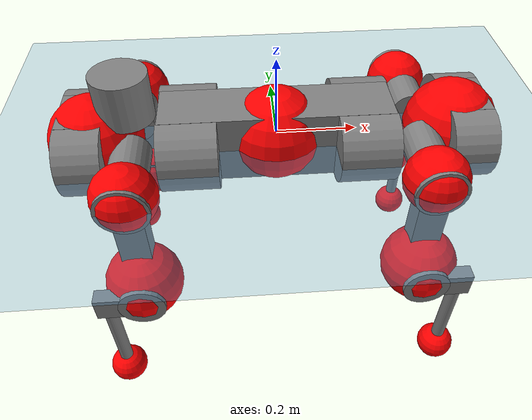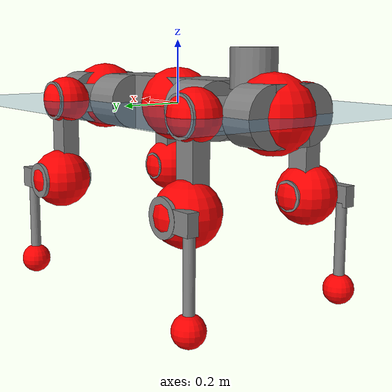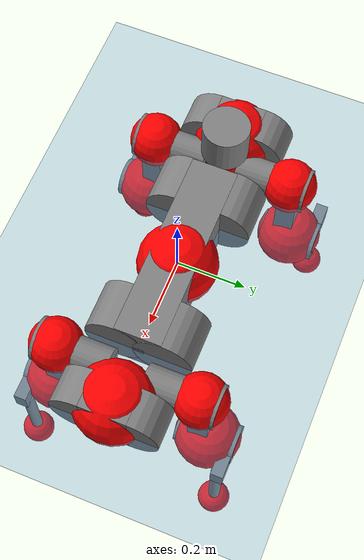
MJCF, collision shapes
<mujoco model="anymal_c">
  <compiler angle="radian" assetdir="assets" balanceinertia="true" inertiafromgeom="false"/>

  <option timestep="0.005" density="1.2" viscosity="2e-05"/>

  <size nkey="1"/>

  <visual>
    <quality shadowsize="8192"/>
    <map shadowclip="0.5"/>
  </visual>

  <default>
    <default class="/">
      <material specular="0" shininess="0.25"/>
      <geom contype="0" conaffinity="0" group="1" solref="-1000 -80"/>
      <site size="0.01 0.005 0.005" group="5"/>
      <general forcelimited="true" forcerange="-80 80" biastype="affine" gainprm="80" biasprm="0 -80 -2"/>
      <default class="anymal_c">
        <joint armature="0.01" damping="0.01" frictionloss="0.1"/>
        <default class="visual">
          <geom type="mesh" group="2"/>
          <default class="visual_zflip"/>
        </default>
        <default class="collision">
          <geom type="cylinder" group="3"/>
          <default class="foot">
            <geom size="0.03 0 0" type="sphere" condim="6" priority="1" friction="0.8 0.02 0.01" solimp="0.015 1 0.03"/>
          </default>
        </default>
      </default>
      <default class="reward_collision_sphere">
        <geom group="5" rgba="1 0 0 1"/>
      </default>
    </default>
  </default>

  <asset>
    <texture type="skybox" colorspace="auto" name="//unnamed_texture_0" builtin="gradient" rgb1="0.95 0.95 0.95" rgb2="0.95 0.95 0.95" width="100" height="600"/>
    <texture type="2d" colorspace="auto" name="texplane" builtin="checker" rgb1="0.345 0.575 0.748" rgb2="0.345 0.575 0.748" markrgb="1 1 1" width="512" height="512"/>
    <texture type="2d" colorspace="linear" name="base" file="base.png"/>
    <texture type="2d" colorspace="linear" name="top_shell" file="top_shell.png"/>
    <texture type="2d" colorspace="linear" name="bottom_shell" file="bottom_shell.png"/>
    <texture type="2d" colorspace="linear" name="remote" file="remote.png"/>
    <texture type="2d" colorspace="linear" name="hatch" file="hatch.png"/>
    <texture type="2d" colorspace="linear" name="handle" file="handle.png"/>
    <texture type="2d" colorspace="linear" name="face" file="face.png"/>
    <texture type="2d" colorspace="linear" name="battery" file="battery.png"/>
    <texture type="2d" colorspace="linear" name="lidar_cage" file="lidar_cage.png"/>
    <texture type="2d" colorspace="linear" name="depth_camera" file="depth_camera.png"/>
    <texture type="2d" colorspace="linear" name="wide_angle_camera" file="wide_angle_camera.png"/>
    <texture type="2d" colorspace="linear" name="lidar" file="lidar.png"/>
    <texture type="2d" colorspace="linear" name="drive" file="drive.png"/>
    <texture type="2d" colorspace="linear" name="hip_l" file="hip_l.png"/>
    <texture type="2d" colorspace="linear" name="shank_l" file="shank_l.png"/>
    <texture type="2d" colorspace="linear" name="foot" file="foot.png"/>
    <texture type="2d" colorspace="linear" name="thigh" file="thigh.png"/>
    <texture type="2d" colorspace="linear" name="shank_r" file="shank_r.png"/>
    <texture type="2d" colorspace="linear" name="hip_r" file="hip_r.png"/>
    <material name="MatPlane" class="/" texture="texplane" texuniform="true" texrepeat="2 2" specular="0.9" shininess="0.5"/>
    <material name="black_plastic" class="/" rgba="0.007 0.007 0.007 1"/>
    <material name="green" class="/" rgba="0.052 0.178 0.033 1"/>
    <material name="red" class="/" rgba="0.178 0.006 0.005 1"/>
    <material name="yellow" class="/" rgba="0.178 0.119 0.006 1"/>
    <material name="lwl" class="/" rgba="0.8 0.8 0.8 1"/>
    <material name="base" class="/" texture="base"/>
    <material name="top_shell" class="/" texture="top_shell"/>
    <material name="bottom_shell" class="/" texture="bottom_shell"/>
    <material name="hip_l" class="/" texture="hip_l"/>
    <material name="thigh" class="/" texture="thigh"/>
    <material name="shank_l" class="/" texture="shank_l"/>
    <material name="foot" class="/" texture="foot"/>
    <material name="hip_r" class="/" texture="hip_r"/>
    <material name="shank" class="/" texture="shank_r"/>
    <material name="hatch" class="/" texture="hatch"/>
    <material name="remote" class="/" texture="remote"/>
    <material name="handle" class="/" texture="handle"/>
    <material name="face" class="/" texture="face"/>
    <material name="depth_camera" class="/" texture="depth_camera"/>
    <material name="wide_angle_camera" class="/" texture="wide_angle_camera"/>
    <material name="battery" class="/" texture="battery"/>
    <material name="lidar_cage" class="/" texture="lidar_cage"/>
    <material name="lidar" class="/" texture="lidar"/>
    <material name="drive" class="/" texture="drive"/>
    <mesh name="base_0" class="/" file="base_0.obj"/>
    <mesh name="base_1" class="/" file="base_1.obj"/>
    <mesh name="base_2" class="/" file="base_2.obj"/>
    <mesh name="base_3" class="/" file="base_3.obj"/>
    <mesh name="base_4" class="/" file="base_4.obj"/>
    <mesh name="base_5" class="/" file="base_5.obj"/>
    <mesh name="top_shell" class="/" file="top_shell.obj"/>
    <mesh name="bottom_shell" class="/" file="bottom_shell.obj"/>
    <mesh name="remote" class="/" file="remote.obj"/>
    <mesh name="handle" class="/" file="handle.obj"/>
    <mesh name="face" class="/" file="face.obj"/>
    <mesh name="wide_angle_camera" class="/" file="wide_angle_camera.obj"/>
    <mesh name="depth_camera" class="/" file="depth_camera.obj"/>
    <mesh name="battery" class="/" file="battery.obj"/>
    <mesh name="lidar_cage" class="/" file="lidar_cage.obj"/>
    <mesh name="lidar" class="/" file="lidar.obj"/>
    <mesh name="drive" class="/" file="drive.obj"/>
    <mesh name="hip_l" class="/" file="hip_l.obj"/>
    <mesh name="thigh" class="/" file="thigh.obj"/>
    <mesh name="shank_l" class="/" file="shank_l.obj"/>
    <mesh name="foot" class="/" file="foot.obj"/>
    <mesh name="hip_r" class="/" file="hip_r.obj"/>
    <mesh name="hatch" class="/" file="hatch.obj"/>
    <mesh name="shank_r" class="/" file="shank_r.obj"/>
  </asset>

  <worldbody>
    <geom name="floor" class="/" size="100 100 0.125" type="plane" group="0" material="MatPlane"/>
    <light name="toplight_shadow" class="/" pos="0 0 5" dir="0.0990148 0.0990148 -0.990148" type="directional" ambient="0.04 0.04 0.04" diffuse="0.55 0.55 0.55" specular="0.12 0.12 0.12"/>
    <light name="toplight_fill" class="/" pos="0 0 5" dir="0.0990148 0.0990148 -0.990148" type="directional" castshadow="false" ambient="0.04 0.04 0.04" diffuse="0.3 0.3 0.3" specular="0.08 0.08 0.08"/>
    <body name="trunk" childclass="anymal_c" pos="-0.000838846 0.000529231 -0.00126268" quat="1 -0.000277897 -0.000503628 -0.000679659">
      <inertial pos="0.00148672 0.00241006 0.0424254" quat="0.502788 0.50351 0.491511 0.502095" mass="17.3024" diaginertia="0.603412 0.642739 0.156229"/>
      <joint name="//unnamed_joint_0" type="free" armature="0" damping="0" frictionloss="0"/>
      <geom name="//unnamed_geom_1" class="visual" material="green" mesh="base_0"/>
      <geom name="//unnamed_geom_2" class="visual" material="yellow" mesh="base_1"/>
      <geom name="//unnamed_geom_3" class="visual" material="red" mesh="base_2"/>
      <geom name="//unnamed_geom_4" class="visual" material="black_plastic" mesh="base_3"/>
      <geom name="//unnamed_geom_5" class="visual" material="lwl" mesh="base_4"/>
      <geom name="//unnamed_geom_6" class="visual" material="base" mesh="base_5"/>
      <geom name="trunk_1" class="collision" size="0.282643 0.0682242 0.0877168" type="box"/>
      <geom name="trunk_2" class="collision" size="0.0877168 0.0706608" pos="0.21403 0.0702787 0" quat="0.707107 0 0.707107 0"/>
      <geom name="trunk_3" class="collision" size="0.0877168 0.0706608" pos="-0.21403 0.0702787 0" quat="0.707107 0 0.707107 0"/>
      <geom name="trunk_4" class="collision" size="0.0877168 0.0706608" pos="0.21403 -0.0702787 0" quat="0.707107 0 0.707107 0"/>
      <geom name="trunk_5" class="collision" size="0.0877168 0.0706608" pos="-0.21403 -0.0702787 0" quat="0.707107 0 0.707107 0"/>
      <geom name="//unnamed_geom_12" class="visual" material="top_shell" mesh="top_shell"/>
      <geom name="//unnamed_geom_13" class="visual" material="bottom_shell" mesh="bottom_shell"/>
      <geom name="//unnamed_geom_14" class="visual" material="remote" mesh="remote"/>
      <geom name="//unnamed_geom_15" class="visual" material="handle" mesh="handle"/>
      <geom name="//unnamed_geom_16" class="visual" pos="0.407887 0 0" quat="1 0 0 0" material="face" mesh="face"/>
      <geom name="trunk_6" class="collision" size="0.0536047 0.0682242 0.0877168" pos="0.46201 0 0" type="box"/>
      <geom name="//unnamed_geom_18" class="collision" size="0.0877168 0.0536047" pos="0.46201 0.0702787 0" quat="0.707107 0 0.707107 0"/>
      <geom name="//unnamed_geom_19" class="collision" size="0.0877168 0.0536047" pos="0.46201 -0.0702787 0" quat="0.707107 0 0.707107 0"/>
      <geom name="//unnamed_geom_20" class="visual" pos="0.454283 0 -0.0269611" quat="0.965926 0 0.258819 0" material="depth_camera" mesh="depth_camera"/>
      <geom name="//unnamed_geom_21" class="visual" pos="0.504816 0 0.0140099" material="wide_angle_camera" mesh="wide_angle_camera"/>
      <geom name="//unnamed_geom_22" class="visual_zflip" pos="-0.407887 0 0" quat="0 0 0 1" material="face" mesh="face"/>
      <geom name="trunk_7" class="collision" size="0.0536047 0.0682242 0.0877168" pos="-0.46201 0 0" quat="0 0 0 1" type="box"/>
      <geom name="//unnamed_geom_24" class="collision" size="0.0877168 0.0536047" pos="-0.46201 -0.0702787 0" quat="0 -0.707107 0 0.707107"/>
      <geom name="//unnamed_geom_25" class="collision" size="0.0877168 0.0536047" pos="-0.46201 0.0702787 0" quat="0 -0.707107 0 0.707107"/>
      <geom name="//unnamed_geom_26" class="visual" pos="-0.454283 0 -0.0269611" quat="0 -0.258819 0 0.965926" material="depth_camera" mesh="depth_camera"/>
      <geom name="//unnamed_geom_27" class="visual_zflip" pos="-0.504816 0 0.0140099" quat="0 0 0 1" material="wide_angle_camera" mesh="wide_angle_camera"/>
      <geom name="//unnamed_geom_28" class="visual" material="battery" mesh="battery"/>
      <geom name="//unnamed_geom_29" class="visual" pos="0 0.077024 0.0275531" quat="0.683013 -0.183013 0.183013 0.683013" material="depth_camera" mesh="depth_camera"/>
      <geom name="//unnamed_geom_30" class="visual" pos="0 -0.077024 0.0275531" quat="0.683013 0.183013 0.183013 -0.683013" material="depth_camera" mesh="depth_camera"/>
      <geom name="//unnamed_geom_31" class="visual" pos="-0.358193 0 0.0687862" quat="1 0 0 0" material="lidar_cage" mesh="lidar_cage"/>
      <geom name="trunk_8" class="collision" size="0.0682242 0.0584779" pos="-0.358193 0 0.124938"/>
      <geom name="//unnamed_geom_33" class="visual" pos="-0.358193 7.83192e-06 0.13308" quat="0.707107 0 0 -0.707107" material="lidar" mesh="lidar"/>
      <geom name="//unnamed_geom_34" class="visual" pos="0.295116 0.10439 1.175e-09" quat="0.258819 0.965926 0 0" material="drive" mesh="drive"/>
      <geom name="//unnamed_geom_35" class="visual" pos="0.295116 -0.10439 -1.175e-09" quat="0.258819 -0.965926 0 0" material="drive" mesh="drive"/>
      <geom name="//unnamed_geom_36" class="visual" pos="-0.295116 0.10439 -1.175e-09" quat="0 0 0.965926 -0.258819" material="drive" mesh="drive"/>
      <geom name="//unnamed_geom_37" class="visual" pos="-0.295116 -0.10439 1.175e-09" quat="0 0 -0.965926 -0.258819" material="drive" mesh="drive"/>
      <geom name="//unnamed_geom_38" class="visual" pos="0.114149 0 0.0683182" quat="1 0 0 0" material="hatch" mesh="hatch"/>
      <geom name="//unnamed_geom_39" class="reward_collision_sphere" size="0.116956"/>
      <geom name="//unnamed_geom_40" class="reward_collision_sphere" size="0.116956" pos="0.442821 0 0"/>
      <geom name="//unnamed_geom_41" class="reward_collision_sphere" size="0.116956" pos="-0.442821 0 0"/>
      <site name="imu" pos="0.244251 0.022306 0.0301" size="0.00974632"/>
      <camera name="track" pos="0 -2.00796 0" quat="0.707107 0.707107 0 0" mode="trackcom"/>
      <camera name="ego_camera" pos="0.442821 0 -0.0374347" quat="-0.5 -0.5 0.5 0.5"/>
      <body name="LF_HIP" pos="0.295309 0.106885 0.00268386" quat="0.258802 0.96593 -3.86275e-05 -1.58064e-07">
        <inertial pos="0.0537834 -0.0146199 -0.00893726" quat="-0.125284 0.705763 -0.138325 0.683424" mass="2.49486" diaginertia="0.00539754 0.00478075 0.00227474"/>
        <joint name="LF_HAA" pos="0 0 0" axis="0.999949 0.00503145 -0.00881156" range="-0.724742 0.542565" armature="0.00985172" damping="0" frictionloss="0.110372"/>
        <geom name="//unnamed_geom_42" class="visual" pos="0 6.91197e-05 -1.13529e-05" quat="0.258819 -0.965926 0 0" material="hip_l" mesh="hip_l"/>
        <geom name="//unnamed_geom_43" class="visual" pos="0.0589444 -0.071662 -0.0408702" quat="0.183013 -0.683013 0.683013 0.183013" material="drive" mesh="drive"/>
        <geom name="//unnamed_geom_44" class="collision" size="0.0487316 0.0682242" pos="0.0589444 -0.0120074 -0.00646216" quat="-0.353553 -0.612372 0.612372 -0.353553"/>
        <body name="LF_THIGH" pos="0.0566833 -0.0706198 -0.0375239" quat="0.183252 -0.683032 0.68288 0.183194">
          <inertial pos="0.0304693 0.000432465 -0.229" quat="0.992994 -0.00384995 -0.086226 0.0807007" mass="2.77574" diaginertia="0.0271443 0.0295975 0.00282647"/>
          <joint name="LF_HFE" pos="0 0 0" axis="0.999997 -0.0019329 -0.00140549" range="-3.20031 3.13393" armature="0.00853703" damping="0.0215219" frictionloss="0.0975406"/>
          <geom name="//unnamed_geom_45" class="visual" pos="-0.000396628 -6.24993e-07 0" quat="0.707107 0 0 -0.707107" material="thigh" mesh="thigh"/>
          <geom name="//unnamed_geom_46" class="collision" size="0.0633511 0.0389853" pos="0.0393619 0 0" quat="0.5 0.5 -0.5 -0.5"/>
          <geom name="//unnamed_geom_47" class="collision" size="0.0365487 0.0292389 0.137729" pos="0.0295214 0 -0.132251" quat="0.707107 0 0 -0.707107" type="box"/>
          <geom name="//unnamed_geom_48" class="visual" pos="0.0986999 0 -0.266722" quat="1 0 0 0" material="drive" mesh="drive"/>
          <geom name="//unnamed_geom_49" class="collision" size="0.0487316 0.0682242" pos="0.0298166 0 -0.266722" quat="0.707107 0 0.707107 0"/>
          <geom name="//unnamed_geom_50" class="reward_collision_sphere" size="0.0779705" pos="0.0246012 0 0"/>
          <body name="LF_SHANK" pos="0.0996851 0.000452843 -0.267934" quat="1 8.89689e-06 1.71724e-06 2.62622e-06">
            <inertial pos="0.00479341 -0.0630964 -0.0755935" quat="0.992943 -0.115359 0.0024811 -0.027411" mass="0.551803" diaginertia="0.00922545 0.00937443 0.000804408"/>
            <joint name="LF_KFE" pos="0 0 0" axis="0.999979 0.00107113 0.00638099" range="-3.15455 3.1948" armature="0.00946933" damping="0.0081906" frictionloss="0.102531"/>
            <geom name="//unnamed_geom_51" class="visual" pos="-0.000129332 -0.000689603 0" quat="0.707107 0 0 -0.707107" material="shank_l" mesh="shank_l"/>
            <geom name="LF_kfe_act" class="collision" size="0.0584779 0.0194926" pos="0.0196809 0 0" quat="0.5 0.5 -0.5 -0.5"/>
            <geom name="//unnamed_geom_53" class="collision" size="0.0560403 0.0328938 0.018518" pos="0.0196809 -0.0577279 0" quat="0.5 0.5 -0.5 -0.5" type="box"/>
            <geom name="//unnamed_geom_54" class="visual" pos="0.0128418 -0.0885224 -0.316295" quat="0.382683 0 0 -0.92388" material="foot" mesh="foot"/>
            <geom name="LF_calf" class="collision" size="0.0170561 0.137669" pos="0.0128418 -0.0883002 -0.158147" quat="0.707107 0 0 -0.707107"/>
            <geom name="LF_foot" class="foot" size="0.0289221" pos="0.0128418 -0.0883002 -0.295238" quat="0.707107 0 0 -0.707107"/>
            <geom name="//unnamed_geom_57" class="reward_collision_sphere" size="0.0974632" pos="-0.0492023 0 0"/>
            <geom name="//unnamed_geom_58" class="reward_collision_sphere" size="0.0487316" pos="0.0128418 -0.0883002 -0.295238"/>
            <site name="LF_foot" class="foot" pos="0.0128418 -0.0883002 -0.295238" quat="0.707107 0 0 -0.707107" size="0.00974632"/>
          </body>
        </body>
      </body>
      <body name="RF_HIP" pos="0.293073 -0.103779 0.00259219" quat="0.258809 -0.965928 0.000169497 0.000314831">
        <inertial pos="0.0539089 0.0158118 -0.00860497" quat="0.134389 0.675379 0.130842 0.71322" mass="2.56918" diaginertia="0.0053002 0.00494864 0.00230382"/>
        <joint name="RF_HAA" pos="0 0 0" axis="0.99994 -0.0108839 0.0015144" range="-0.518986 0.671463" armature="0.0100606" damping="0" frictionloss="0.111302"/>
        <geom name="//unnamed_geom_59" class="visual" pos="0 -6.91192e-05 -1.13528e-05" quat="0.258819 0.965926 0 0" material="hip_r" mesh="hip_r"/>
        <geom name="//unnamed_geom_60" class="visual" pos="0.0589444 0.071662 -0.0408702" quat="0.183013 0.683013 0.683013 -0.183013" material="drive" mesh="drive"/>
        <geom name="//unnamed_geom_61" class="collision" size="0.0487316 0.0682242" pos="0.0589444 0.0120074 -0.00646216" quat="-0.353553 0.612372 0.612372 0.353553"/>
        <body name="RF_THIGH" pos="0.0590128 0.0701135 -0.0405151" quat="0.183262 0.683609 0.682334 -0.18307">
          <inertial pos="0.0279828 0.00035491 -0.230633" quat="0.992223 -0.00380371 -0.0844775 0.0913353" mass="2.94768" diaginertia="0.0277718 0.0296203 0.00309959"/>
          <joint name="RF_HFE" pos="0 0 0" axis="1 -0.000321383 -9.66554e-05" stiffness="0.0120695" range="-3.14771 3.08294" armature="0.00854759" damping="0.0089418" frictionloss="0.0847413"/>
          <geom name="//unnamed_geom_62" class="visual" pos="-0.000396628 -6.24993e-07 0" quat="0.707107 0 0 -0.707107" material="thigh" mesh="thigh"/>
          <geom name="//unnamed_geom_63" class="collision" size="0.0633511 0.0389853" pos="0.0393619 0 0" quat="0.5 0.5 0.5 0.5"/>
          <geom name="//unnamed_geom_64" class="collision" size="0.0365487 0.0292389 0.137729" pos="0.0295214 0 -0.132251" quat="0.707107 0 0 0.707107" type="box"/>
          <geom name="//unnamed_geom_65" class="visual" pos="0.0986999 0 -0.266722" quat="1 0 0 0" material="drive" mesh="drive"/>
          <geom name="//unnamed_geom_66" class="collision" size="0.0487316 0.0682242" pos="0.0298166 0 -0.266722" quat="0.707107 0 0.707107 0"/>
          <geom name="//unnamed_geom_67" class="reward_collision_sphere" size="0.0779705" pos="0.0246012 0 0"/>
          <body name="RF_SHANK" pos="0.0969401 0.000627038 -0.267215" quat="1 -1.12258e-05 -3.03148e-05 -1.57814e-05">
            <inertial pos="0.00512574 0.0595872 -0.0726396" quat="0.992486 0.119034 -0.00129308 0.0283132" mass="0.535261" diaginertia="0.0092696 0.00945523 0.000756823"/>
            <joint name="RF_KFE" pos="0 0 0" axis="0.999999 0.000554207 0.00141971" range="-3.14441 3.15303" armature="0.00937483" damping="0" frictionloss="0.0851322"/>
            <geom name="//unnamed_geom_68" class="visual" pos="-0.000129331 0.000689602 0" quat="0.707107 0 0 0.707107" material="shank" mesh="shank_r"/>
            <geom name="RF_kfe_act" class="collision" size="0.0584779 0.0194926" pos="0.0196809 0 0" quat="0.5 0.5 0.5 0.5"/>
            <geom name="//unnamed_geom_70" class="collision" size="0.0560403 0.0328938 0.018518" pos="0.0196809 0.0577279 0" quat="0.5 0.5 0.5 0.5" type="box"/>
            <geom name="//unnamed_geom_71" class="visual" pos="0.0128418 0.0885224 -0.316295" quat="0.382683 0 0 0.92388" material="foot" mesh="foot"/>
            <geom name="RF_calf" class="collision" size="0.0170561 0.137669" pos="0.0128418 0.0883002 -0.158147" quat="0.707107 0 0 0.707107"/>
            <geom name="RF_foot" class="foot" size="0.0272008" pos="0.0128418 0.0883002 -0.295238" quat="0.707107 0 0 0.707107"/>
            <geom name="//unnamed_geom_74" class="reward_collision_sphere" size="0.0974632" pos="-0.0492023 0 0"/>
            <geom name="//unnamed_geom_75" class="reward_collision_sphere" size="0.0487316" pos="0.0128418 0.0883002 -0.295238"/>
            <site name="RF_foot" class="foot" pos="0.0128418 0.0883002 -0.295238" quat="0.707107 0 0 0.707107" size="0.00974632"/>
          </body>
        </body>
      </body>
      <body name="LH_HIP" pos="-0.295221 0.102226 0.00310331" quat="0.000358332 -0.000662474 0.966032 -0.258421">
        <inertial pos="0.0547076 0.013219 -0.00901738" quat="0.126681 0.682277 0.131256 0.70797" mass="2.51488" diaginertia="0.00505521 0.00496816 0.0022039"/>
        <joint name="LH_HAA" pos="0 0 0" axis="0.999929 0.0118804 -0.000504285" range="-0.537156 0.758838" armature="0.0108705" damping="0.00184086" frictionloss="0.0960958"/>
        <geom name="//unnamed_geom_76" class="visual" pos="0 -6.91192e-05 -1.13528e-05" quat="-0.258819 -0.965926 0 0" material="hip_r" mesh="hip_r"/>
        <geom name="//unnamed_geom_77" class="visual" pos="0.0589444 0.071662 -0.0408702" quat="0.183013 0.683013 0.683013 -0.183013" material="drive" mesh="drive"/>
        <geom name="//unnamed_geom_78" class="collision" size="0.0487316 0.0682242" pos="0.0589444 0.0120074 -0.00646216" quat="-0.353553 0.612372 0.612372 0.353553"/>
        <body name="LH_THIGH" pos="0.0589931 0.0707708 -0.0399222" quat="0.182291 0.683712 0.682281 -0.18385">
          <inertial pos="0.0311919 -0.00288157 -0.230696" quat="0.99276 -0.00500867 -0.0807095 0.0888202" mass="2.89179" diaginertia="0.0287179 0.0304394 0.00313073"/>
          <joint name="LH_HFE" pos="0 0 0" axis="0.99998 -0.00510113 0.00377009" stiffness="0.00981616" range="-3.19931 3.12471" armature="0.0095096" damping="0.00542337" frictionloss="0.108964"/>
          <geom name="//unnamed_geom_79" class="visual" pos="-0.000396628 -6.24993e-07 0" quat="0.707107 0 0 -0.707107" material="thigh" mesh="thigh"/>
          <geom name="//unnamed_geom_80" class="collision" size="0.0633511 0.0389853" pos="0.0393619 0 0" quat="0.5 0.5 -0.5 -0.5"/>
          <geom name="//unnamed_geom_81" class="collision" size="0.0365487 0.0292389 0.137729" pos="0.0295214 0 -0.132251" quat="0.707107 0 0 -0.707107" type="box"/>
          <geom name="//unnamed_geom_82" class="visual" pos="0.0986999 0 -0.266722" quat="1 0 0 0" material="drive" mesh="drive"/>
          <geom name="//unnamed_geom_83" class="collision" size="0.0487316 0.0682242" pos="0.0298166 0 -0.266722" quat="0.707107 0 0.707107 0"/>
          <geom name="//unnamed_geom_84" class="reward_collision_sphere" size="0.0779705" pos="0.0246012 0 0"/>
          <body name="LH_SHANK" pos="0.0963064 -0.00138601 -0.268054" quat="0.999999 -0.000940228 -0.000721563 -0.000709985">
            <inertial pos="0.00397354 0.0641521 -0.0764619" quat="0.991877 0.124898 -0.00471647 0.0236452" mass="0.520031" diaginertia="0.00904577 0.00879666 0.000796867"/>
            <joint name="LH_KFE" pos="0 0 0" axis="0.999997 -0.00200127 0.00130674" range="-3.15493 3.12787" armature="0.0107046" damping="0.00488529" frictionloss="0.0958176"/>
            <geom name="//unnamed_geom_85" class="visual" pos="-0.000129331 0.000689602 0" quat="-0.707107 0 0 -0.707107" material="shank" mesh="shank_r"/>
            <geom name="LH_kfe_act" class="collision" size="0.0584779 0.0194926" pos="0.0196809 0 0" quat="0.5 0.5 -0.5 -0.5"/>
            <geom name="//unnamed_geom_87" class="collision" size="0.0560403 0.0328938 0.018518" pos="0.0196809 0.0577279 0" quat="0.5 0.5 -0.5 -0.5" type="box"/>
            <geom name="//unnamed_geom_88" class="visual" pos="0.0128418 0.0885224 -0.316295" quat="-0.382683 0 0 -0.92388" material="foot" mesh="foot"/>
            <geom name="LH_calf" class="collision" size="0.0170561 0.137669" pos="0.0128418 0.0883002 -0.158147" quat="0.707107 0 0 -0.707107"/>
            <geom name="LH_foot" class="foot" size="0.0322264" pos="0.0128418 0.0883002 -0.295238" quat="0.707107 0 0 -0.707107"/>
            <geom name="//unnamed_geom_91" class="reward_collision_sphere" size="0.0974632" pos="-0.0492023 0 0"/>
            <geom name="//unnamed_geom_92" class="reward_collision_sphere" size="0.0487316" pos="0.0128418 0.0883002 -0.295238"/>
            <site name="LH_foot" class="foot" pos="0.0128418 0.0883002 -0.295238" quat="0.707107 0 0 -0.707107" size="0.00974632"/>
          </body>
        </body>
      </body>
      <body name="RH_HIP" pos="-0.294307 -0.104842 0.00264431" quat="-0.000106982 -0.000311805 -0.96585 -0.259101">
        <inertial pos="0.0532064 -0.0182281 -0.00807289" quat="-0.131878 0.703504 -0.138317 0.684514" mass="2.59737" diaginertia="0.00560171 0.00508261 0.00247947"/>
        <joint name="RH_HAA" pos="0 0 0" axis="0.999995 0.0020775 0.00256379" range="-0.774496 0.490178" armature="0.00980996" damping="0.0113575" frictionloss="0.101206"/>
        <geom name="//unnamed_geom_93" class="visual" pos="0 6.91197e-05 -1.13529e-05" quat="-0.258819 0.965926 0 0" material="hip_l" mesh="hip_l"/>
        <geom name="//unnamed_geom_94" class="visual" pos="0.0589444 -0.071662 -0.0408702" quat="-0.183013 0.683013 -0.683013 -0.183013" material="drive" mesh="drive"/>
        <geom name="//unnamed_geom_95" class="collision" size="0.0487316 0.0682242" pos="0.0589444 -0.0120074 -0.00646216" quat="0.353553 0.612372 -0.612372 0.353553"/>
        <body name="RH_THIGH" pos="0.0596304 -0.0715275 -0.0414968" quat="-0.182912 0.682989 -0.683068 -0.182997">
          <inertial pos="0.0328446 -0.00275994 -0.231973" quat="0.99467 -0.00151714 -0.0726201 0.0731864" mass="2.76495" diaginertia="0.0282555 0.0298782 0.00297155"/>
          <joint name="RH_HFE" pos="0 0 0" axis="0.999932 -0.00981403 0.00622885" range="-3.13907 3.0907" armature="0.00985585" damping="0" frictionloss="0.0936826"/>
          <geom name="//unnamed_geom_96" class="visual" pos="-0.000396628 -6.24993e-07 0" quat="0.707107 0 0 -0.707107" material="thigh" mesh="thigh"/>
          <geom name="//unnamed_geom_97" class="collision" size="0.0633511 0.0389853" pos="0.0393619 0 0" quat="0.5 0.5 0.5 0.5"/>
          <geom name="//unnamed_geom_98" class="collision" size="0.0365487 0.0292389 0.137729" pos="0.0295214 0 -0.132251" quat="0.707107 0 0 0.707107" type="box"/>
          <geom name="//unnamed_geom_99" class="visual" pos="0.0986999 0 -0.266722" quat="1 0 0 0" material="drive" mesh="drive"/>
          <geom name="//unnamed_geom_100" class="collision" size="0.0487316 0.0682242" pos="0.0298166 0 -0.266722" quat="0.707107 0 0.707107 0"/>
          <geom name="//unnamed_geom_101" class="reward_collision_sphere" size="0.0779705" pos="0.0246012 0 0"/>
          <body name="RH_SHANK" pos="0.097338 0.00320166 -0.268755" quat="1 0.000287163 -6.83861e-05 -3.86488e-05">
            <inertial pos="0.00700825 -0.0610067 -0.0756458" quat="0.993719 -0.110488 -0.00201613 -0.0176575" mass="0.564408" diaginertia="0.00976466 0.0100793 0.000813597"/>
            <joint name="RH_KFE" pos="0 0 0" axis="0.999987 -0.00231559 -0.00456379" range="-3.08611 3.12404" armature="0.00996744" damping="0" frictionloss="0.0930589"/>
            <geom name="//unnamed_geom_102" class="visual" pos="-0.000129332 -0.000689603 0" quat="0.707107 0 0 -0.707107" material="shank_l" mesh="shank_l"/>
            <geom name="RH_kfe_act" class="collision" size="0.0584779 0.0194926" pos="0.0196809 0 0" quat="0.5 0.5 0.5 0.5"/>
            <geom name="//unnamed_geom_104" class="collision" size="0.0560403 0.0328938 0.018518" pos="0.0196809 -0.0577279 0" quat="0.5 0.5 0.5 0.5" type="box"/>
            <geom name="//unnamed_geom_105" class="visual" pos="0.0128418 -0.0885224 -0.316295" quat="0.382683 0 0 -0.92388" material="foot" mesh="foot"/>
            <geom name="RH_calf" class="collision" size="0.0170561 0.137669" pos="0.0128418 -0.0883002 -0.158147" quat="0.707107 0 0 0.707107"/>
            <geom name="RH_foot" class="foot" size="0.024229" pos="0.0128418 -0.0883002 -0.295238" quat="0.707107 0 0 0.707107"/>
            <geom name="//unnamed_geom_108" class="reward_collision_sphere" size="0.0974632" pos="-0.0492023 0 0"/>
            <geom name="//unnamed_geom_109" class="reward_collision_sphere" size="0.0487316" pos="0.0128418 -0.0883002 -0.295238"/>
            <site name="RH_foot" class="foot" pos="0.0128418 -0.0883002 -0.295238" quat="0.707107 0 0 0.707107" size="0.00974632"/>
          </body>
        </body>
      </body>
    </body>
  </worldbody>

  <contact>
    <pair class="/" geom1="floor" geom2="LF_foot" name="//unnamed_contact_0"/>
    <pair class="/" geom1="floor" geom2="RF_foot" name="//unnamed_contact_1"/>
    <pair class="/" geom1="floor" geom2="LH_foot" name="//unnamed_contact_2"/>
    <pair class="/" geom1="floor" geom2="RH_foot" name="//unnamed_contact_3"/>
  </contact>

  <actuator>
    <general name="LF_HAA" class="/" joint="LF_HAA" forcerange="-77.303 77.303" gainprm="78.3235" biasprm="0 -78.3235 -1.8056"/>
    <general name="LF_HFE" class="/" joint="LF_HFE" forcerange="-78.2126 78.2126" gainprm="78.3235" biasprm="0 -78.3235 -1.8056"/>
    <general name="LF_KFE" class="/" joint="LF_KFE" forcerange="-86.3338 86.3338" gainprm="78.3235" biasprm="0 -78.3235 -1.8056"/>
    <general name="RF_HAA" class="/" joint="RF_HAA" forcerange="-80.363 80.363" gainprm="78.3235" biasprm="0 -78.3235 -1.8056"/>
    <general name="RF_HFE" class="/" joint="RF_HFE" forcerange="-88.1475 88.1475" gainprm="78.3235" biasprm="0 -78.3235 -1.8056"/>
    <general name="RF_KFE" class="/" joint="RF_KFE" forcerange="-76.6782 76.6782" gainprm="78.3235" biasprm="0 -78.3235 -1.8056"/>
    <general name="LH_HAA" class="/" joint="LH_HAA" forcerange="-77.6042 77.6042" gainprm="78.3235" biasprm="0 -78.3235 -1.8056"/>
    <general name="LH_HFE" class="/" joint="LH_HFE" forcerange="-74.1766 74.1766" gainprm="78.3235" biasprm="0 -78.3235 -1.8056"/>
    <general name="LH_KFE" class="/" joint="LH_KFE" forcerange="-84.1451 84.1451" gainprm="78.3235" biasprm="0 -78.3235 -1.8056"/>
    <general name="RH_HAA" class="/" joint="RH_HAA" forcerange="-78.4744 78.4744" gainprm="78.3235" biasprm="0 -78.3235 -1.8056"/>
    <general name="RH_HFE" class="/" joint="RH_HFE" forcerange="-73.8437 73.8437" gainprm="78.3235" biasprm="0 -78.3235 -1.8056"/>
    <general name="RH_KFE" class="/" joint="RH_KFE" forcerange="-86.4993 86.4993" gainprm="78.3235" biasprm="0 -78.3235 -1.8056"/>
  </actuator>

  <sensor>
    <gyro site="imu" name="imu_angular_velocity"/>
    <velocimeter site="imu" name="imu_linear_velocity"/>
    <framelinvel objtype="site" objname="LF_foot" name="LF_foot_global_linear_velocity"/>
    <framelinvel objtype="site" objname="RF_foot" name="RF_foot_global_linear_velocity"/>
    <framelinvel objtype="site" objname="LH_foot" name="LH_foot_global_linear_velocity"/>
    <framelinvel objtype="site" objname="RH_foot" name="RH_foot_global_linear_velocity"/>
  </sensor>

  <keyframe>
    <key name="home" qpos="0 0 0.55 1 0 0 0 0 0.4 -0.8 0 -0.4 0.8 0 -0.4 0.8 0 0.4 -0.8"/>
  </keyframe>
</mujoco>
